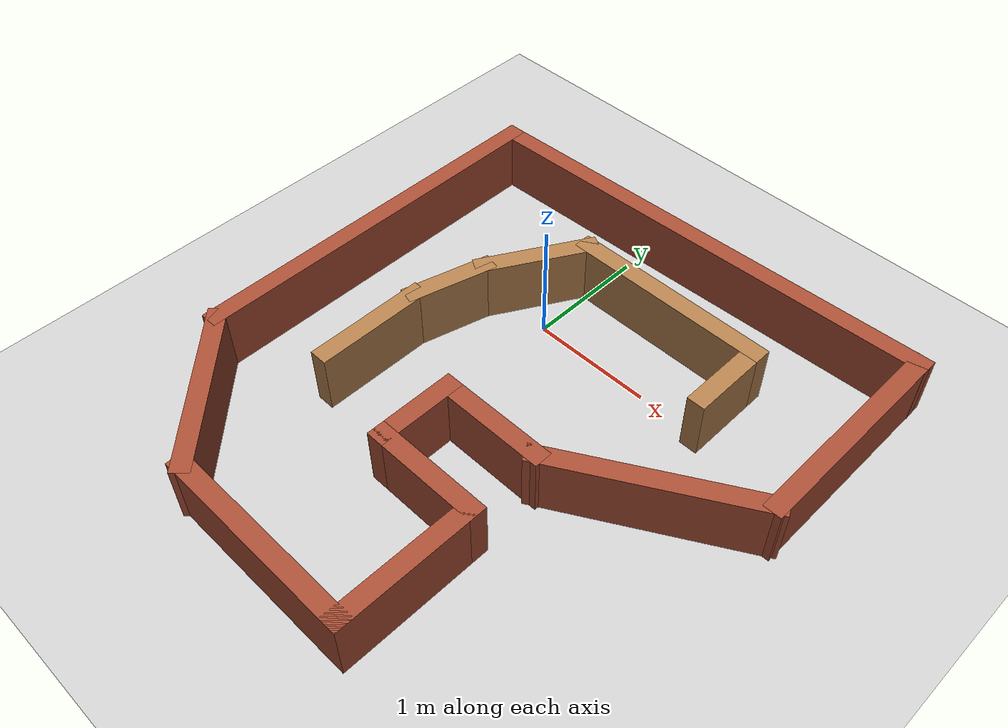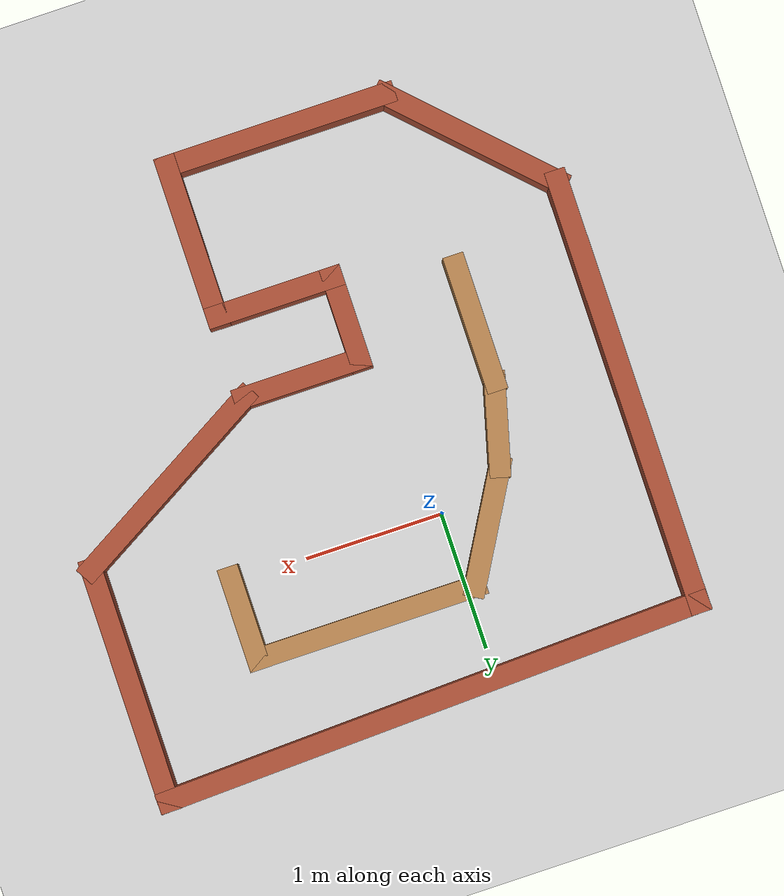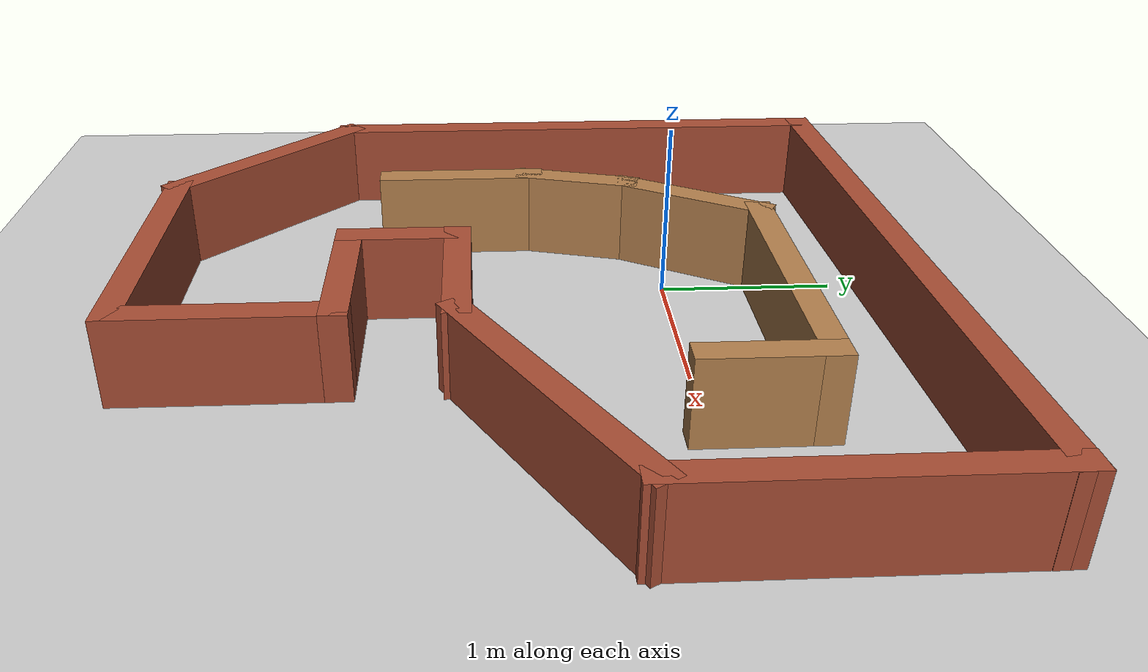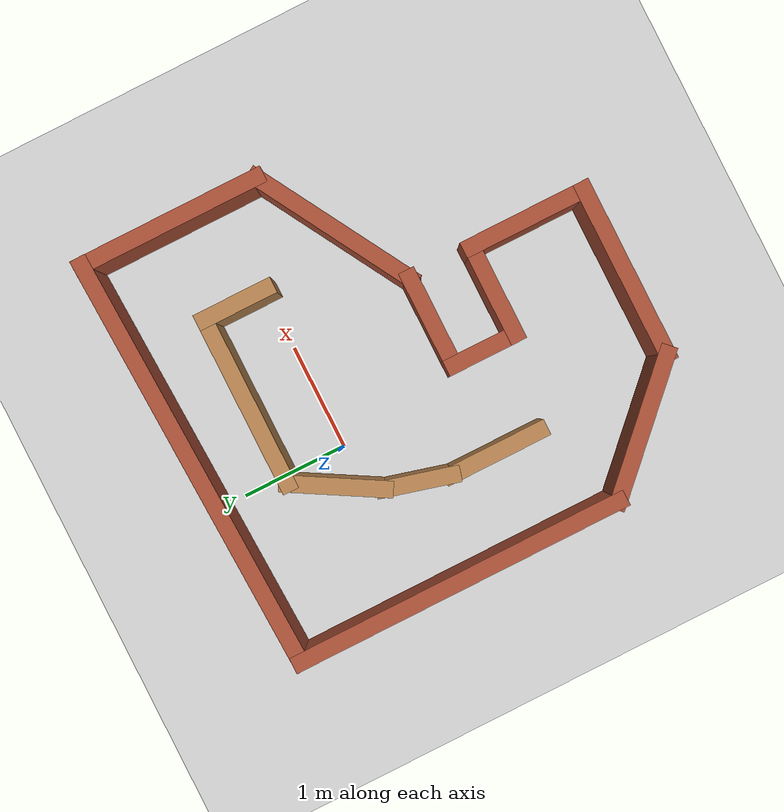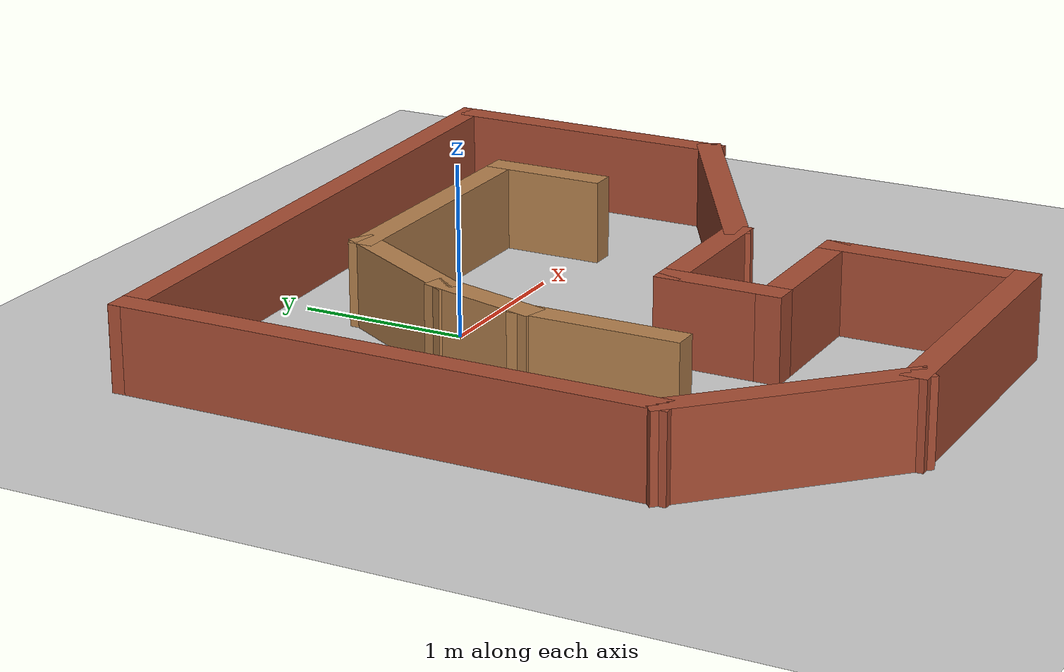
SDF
<sdf version="1.7">
 <world name="default">
  <light name="sun" type="directional">
   <pose>0 0 10 0 -0 0</pose>
   <diffuse>0.8 0.8 0.8 1</diffuse>
   <specular>0.2 0.2 0.2 1</specular>
   <attenuation>
    <range>1000</range>
    <constant>0.9</constant>
    <linear>0.01</linear>
    <quadratic>0.001</quadratic>
   </attenuation>
   <direction>-0.5 0.1 -0.9</direction>
   <spot><inner_angle>0</inner_angle><outer_angle>0</outer_angle><falloff>0</falloff></spot>
  </light>
  <model name="ground_plane">
   <static>1</static>
   <link name="link">
    <collision name="collision">
     <geometry><plane><normal>0 0 1</normal><size>100 100</size></plane></geometry>
     <surface>
      <contact><collide_bitmask>65535</collide_bitmask></contact>
      <friction><ode><mu>100</mu><mu2>50</mu2></ode></friction>
     </surface>
    </collision>
    <visual name="visual">
     <cast_shadows>0</cast_shadows>
     <geometry><plane><normal>0 0 1</normal><size>100 100</size></plane></geometry>
     <material>
      <script><uri>file://media/materials/scripts/gazebo.material</uri><name>Gazebo/Grey</name></script>
     </material>
    </visual>
   </link>
  </model>
  <gravity>0 0 -9.8</gravity>
  <magnetic_field>6e-06 2.3e-05 -4.2e-05</magnetic_field>
  <atmosphere type="adiabatic"/>
  <physics type="ode">
   <max_step_size>0.001</max_step_size>
   <real_time_factor>1</real_time_factor>
   <real_time_update_rate>1000</real_time_update_rate>
  </physics>
  <scene><ambient>0.4 0.4 0.4 1</ambient><background>0.7 0.7 0.7 1</background><shadows>1</shadows></scene>
  <spherical_coordinates>
   <surface_model>EARTH_WGS84</surface_model>
   <latitude_deg>0</latitude_deg>
   <longitude_deg>0</longitude_deg>
   <elevation>0</elevation>
   <heading_deg>0</heading_deg>
  </spherical_coordinates>
  <model name="custom_world2">
   <pose>0.468996 -0.815106 0 0 -0 0</pose>
   <link name="Wall_0">
    <collision name="Wall_0_Collision">
     <geometry><box><size>3.25 0.15 0.5</size></box></geometry>
     <pose>0 0 0.25 0 -0 0</pose>
    </collision>
    <visual name="Wall_0_Visual">
     <pose>0 0 0.25 0 -0 0</pose>
     <geometry><box><size>3.25 0.15 0.5</size></box></geometry>
     <material>
      <script><uri>file://media/materials/scripts/gazebo.material</uri><name>Gazebo/Bricks</name></script>
      <ambient>1 1 1 1</ambient>
     </material>
     <meta><layer>0</layer></meta>
    </visual>
    <pose>-1.96842 0.419076 0 0 -0 1.5708</pose>
   </link>
   <link name="Wall_12">
    <collision name="Wall_12_Collision">
     <geometry><box><size>4.09292 0.15 0.5</size></box></geometry>
     <pose>0 0 0.25 0 -0 0</pose>
    </collision>
    <visual name="Wall_12_Visual">
     <pose>0 0 0.25 0 -0 0</pose>
     <geometry><box><size>4.09292 0.15 0.5</size></box></geometry>
     <material>
      <script><uri>file://media/materials/scripts/gazebo.material</uri><name>Gazebo/Bricks</name></script>
      <ambient>1 1 1 1</ambient>
     </material>
     <meta><layer>0</layer></meta>
    </visual>
    <pose>0.001583 2.04157 0 0 -0 -3.10481</pose>
   </link>
   <link name="Wall_14">
    <collision name="Wall_14_Collision">
     <geometry><box><size>1.85 0.15 0.5</size></box></geometry>
     <pose>0 0 0.25 0 -0 0</pose>
    </collision>
    <visual name="Wall_14_Visual">
     <pose>0 0 0.25 0 -0 0</pose>
     <geometry><box><size>1.85 0.15 0.5</size></box></geometry>
     <material>
      <script><uri>file://media/materials/scripts/gazebo.material</uri><name>Gazebo/Bricks</name></script>
      <ambient>1 1 1 1</ambient>
     </material>
     <meta><layer>0</layer></meta>
    </visual>
    <pose>1.97158 1.26408 0 0 -0 -1.5708</pose>
   </link>
   <link name="Wall_16">
    <collision name="Wall_16_Collision">
     <geometry><box><size>0.75 0.15 0.5</size></box></geometry>
     <pose>0 0 0.25 0 -0 0</pose>
    </collision>
    <visual name="Wall_16_Visual">
     <pose>0 0 0.25 0 -0 0</pose>
     <geometry><box><size>0.75 0.15 0.5</size></box></geometry>
     <material>
      <script><uri>file://media/materials/scripts/gazebo.material</uri><name>Gazebo/Wood</name></script>
      <ambient>1 1 1 1</ambient>
     </material>
     <meta><layer>0</layer></meta>
    </visual>
    <pose>1.07058 1.07308 0 0 -0 1.5708</pose>
   </link>
   <link name="Wall_17">
    <collision name="Wall_17_Collision">
     <geometry><box><size>1.75 0.15 0.5</size></box></geometry>
     <pose>0 0 0.25 0 -0 0</pose>
    </collision>
    <visual name="Wall_17_Visual">
     <pose>0 0 0.25 0 -0 0</pose>
     <geometry><box><size>1.75 0.15 0.5</size></box></geometry>
     <material>
      <script><uri>file://media/materials/scripts/gazebo.material</uri><name>Gazebo/Wood</name></script>
      <ambient>1 1 1 1</ambient>
     </material>
     <meta><layer>0</layer></meta>
    </visual>
    <pose>0.270583 1.37308 0 0 -0 3.14159</pose>
   </link>
   <link name="Wall_18">
    <collision name="Wall_18_Collision">
     <geometry><box><size>1 0.15 0.5</size></box></geometry>
     <pose>0 0 0.25 0 -0 0</pose>
    </collision>
    <visual name="Wall_18_Visual">
     <pose>0 0 0.25 0 -0 0</pose>
     <geometry><box><size>1 0.15 0.5</size></box></geometry>
     <material>
      <script><uri>file://media/materials/scripts/gazebo.material</uri><name>Gazebo/Wood</name></script>
      <ambient>1 1 1 1</ambient>
     </material>
     <meta><layer>0</layer></meta>
    </visual>
    <pose>-0.741917 1.00508 0 0 -0 -2.09447</pose>
   </link>
   <link name="Wall_19">
    <collision name="Wall_19_Collision">
     <geometry><box><size>0.75 0.15 0.5</size></box></geometry>
     <pose>0 0 0.25 0 -0 0</pose>
    </collision>
    <visual name="Wall_19_Visual">
     <pose>0 0 0.25 0 -0 0</pose>
     <geometry><box><size>0.75 0.15 0.5</size></box></geometry>
     <material>
      <script><uri>file://media/materials/scripts/gazebo.material</uri><name>Gazebo/Wood</name></script>
      <ambient>1 1 1 1</ambient>
     </material>
     <meta><layer>0</layer></meta>
    </visual>
    <pose>-1.03192 0.347076 0 0 -0 -1.83194</pose>
   </link>
   <link name="Wall_2">
    <collision name="Wall_2_Collision">
     <geometry><box><size>1.5 0.15 0.5</size></box></geometry>
     <pose>0 0 0.25 0 -0 0</pose>
    </collision>
    <visual name="Wall_2_Visual">
     <pose>0 0 0.25 0 -0 0</pose>
     <geometry><box><size>1.5 0.15 0.5</size></box></geometry>
     <material>
      <script><uri>file://media/materials/scripts/gazebo.material</uri><name>Gazebo/Bricks</name></script>
      <ambient>1 1 1 1</ambient>
     </material>
     <meta><layer>0</layer></meta>
    </visual>
    <pose>-1.49092 -1.60842 0 0 -0 -0.785398</pose>
   </link>
   <link name="Wall_20">
    <collision name="Wall_20_Collision">
     <geometry><box><size>1 0.15 0.5</size></box></geometry>
     <pose>0 0 0.25 0 -0 0</pose>
    </collision>
    <visual name="Wall_20_Visual">
     <pose>0 0 0.25 0 -0 0</pose>
     <geometry><box><size>1 0.15 0.5</size></box></geometry>
     <material>
      <script><uri>file://media/materials/scripts/gazebo.material</uri><name>Gazebo/Wood</name></script>
      <ambient>1 1 1 1</ambient>
     </material>
     <meta><layer>0</layer></meta>
    </visual>
    <pose>-1.10942 -0.367925 0 0 -0 -1.5708</pose>
   </link>
   <link name="Wall_4">
    <collision name="Wall_4_Collision">
     <geometry><box><size>1.75 0.15 0.5</size></box></geometry>
     <pose>0 0 0.25 0 -0 0</pose>
    </collision>
    <visual name="Wall_4_Visual">
     <pose>0 0 0.25 0 -0 0</pose>
     <geometry><box><size>1.75 0.15 0.5</size></box></geometry>
     <material>
      <script><uri>file://media/materials/scripts/gazebo.material</uri><name>Gazebo/Bricks</name></script>
      <ambient>1 1 1 1</ambient>
     </material>
     <meta><layer>0</layer></meta>
    </visual>
    <pose>-0.213417 -2.08593 0 0 -0 0</pose>
   </link>
   <link name="Wall_5">
    <collision name="Wall_5_Collision">
     <geometry><box><size>1.25 0.15 0.5</size></box></geometry>
     <pose>0 0 0.25 0 -0 0</pose>
    </collision>
    <visual name="Wall_5_Visual">
     <pose>0 0 0.25 0 -0 0</pose>
     <geometry><box><size>1.25 0.15 0.5</size></box></geometry>
     <material>
      <script><uri>file://media/materials/scripts/gazebo.material</uri><name>Gazebo/Bricks</name></script>
      <ambient>1 1 1 1</ambient>
     </material>
     <meta><layer>0</layer></meta>
    </visual>
    <pose>0.586583 -1.53592 0 0 -0 1.5708</pose>
   </link>
   <link name="Wall_6">
    <collision name="Wall_6_Collision">
     <geometry><box><size>1 0.15 0.5</size></box></geometry>
     <pose>0 0 0.25 0 -0 0</pose>
    </collision>
    <visual name="Wall_6_Visual">
     <pose>0 0 0.25 0 -0 0</pose>
     <geometry><box><size>1 0.15 0.5</size></box></geometry>
     <material>
      <script><uri>file://media/materials/scripts/gazebo.material</uri><name>Gazebo/Bricks</name></script>
      <ambient>1 1 1 1</ambient>
     </material>
     <meta><layer>0</layer></meta>
    </visual>
    <pose>0.161583 -0.985924 0 0 -0 3.14159</pose>
   </link>
   <link name="Wall_7">
    <collision name="Wall_7_Collision">
     <geometry><box><size>0.75 0.15 0.5</size></box></geometry>
     <pose>0 0 0.25 0 -0 0</pose>
    </collision>
    <visual name="Wall_7_Visual">
     <pose>0 0 0.25 0 -0 0</pose>
     <geometry><box><size>0.75 0.15 0.5</size></box></geometry>
     <material>
      <script><uri>file://media/materials/scripts/gazebo.material</uri><name>Gazebo/Bricks</name></script>
      <ambient>1 1 1 1</ambient>
     </material>
     <meta><layer>0</layer></meta>
    </visual>
    <pose>-0.263417 -0.685924 0 0 -0 1.5708</pose>
   </link>
   <link name="Wall_8">
    <collision name="Wall_8_Collision">
     <geometry><box><size>1 0.15 0.5</size></box></geometry>
     <pose>0 0 0.25 0 -0 0</pose>
    </collision>
    <visual name="Wall_8_Visual">
     <pose>0 0 0.25 0 -0 0</pose>
     <geometry><box><size>1 0.15 0.5</size></box></geometry>
     <material>
      <script><uri>file://media/materials/scripts/gazebo.material</uri><name>Gazebo/Bricks</name></script>
      <ambient>1 1 1 1</ambient>
     </material>
     <meta><layer>0</layer></meta>
    </visual>
    <pose>0.161583 -0.385925 0 0 -0 0</pose>
   </link>
   <link name="Wall_9">
    <collision name="Wall_9_Collision">
     <geometry><box><size>1.75 0.15 0.5</size></box></geometry>
     <pose>0 0 0.25 0 -0 0</pose>
    </collision>
    <visual name="Wall_9_Visual">
     <pose>0 0 0.25 0 -0 0</pose>
     <geometry><box><size>1.75 0.15 0.5</size></box></geometry>
     <material>
      <script><uri>file://media/materials/scripts/gazebo.material</uri><name>Gazebo/Bricks</name></script>
      <ambient>1 1 1 1</ambient>
     </material>
     <meta><layer>0</layer></meta>
    </visual>
    <pose>1.27908 0.014075 0 0 -0 0.523799</pose>
   </link>
   <static>1</static>
  </model>
 </world>
</sdf>
